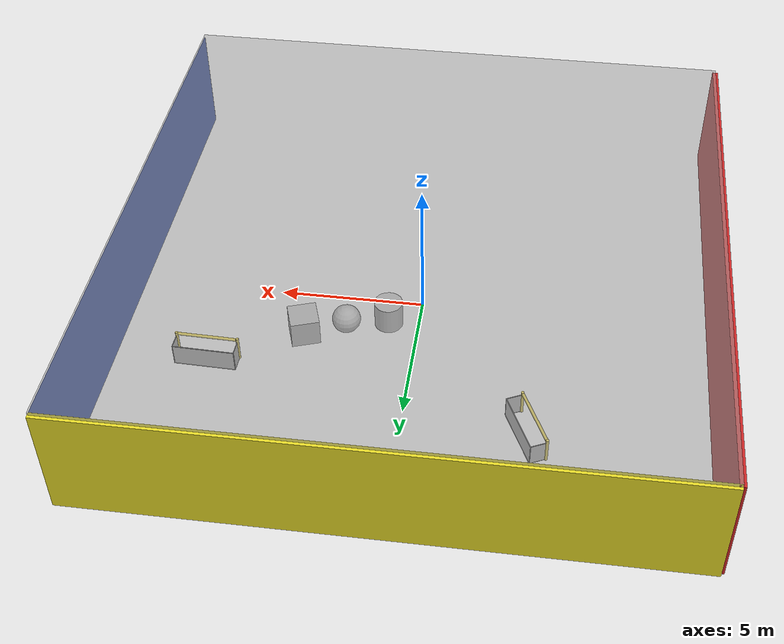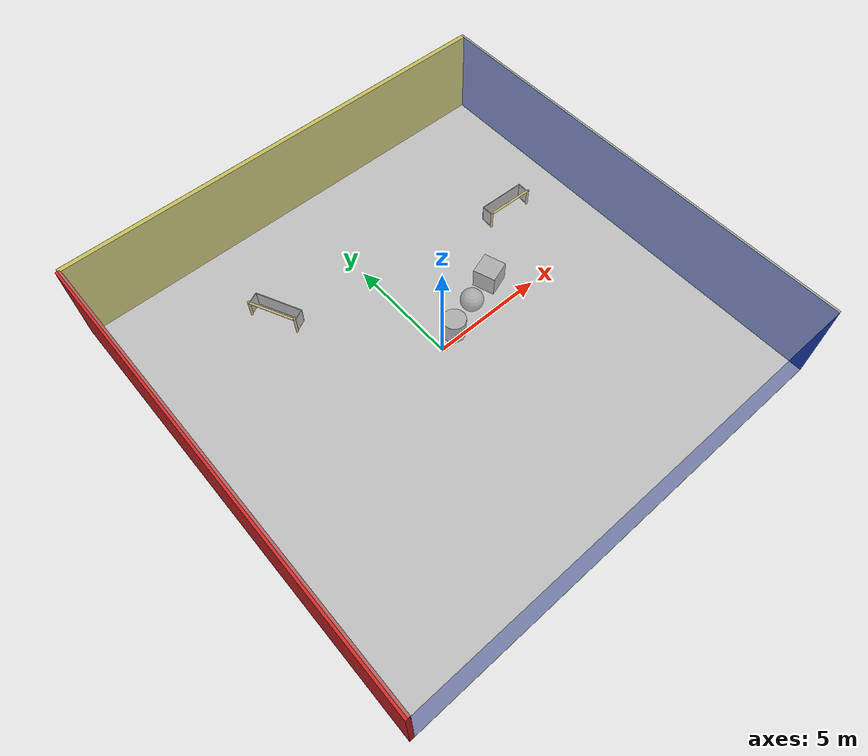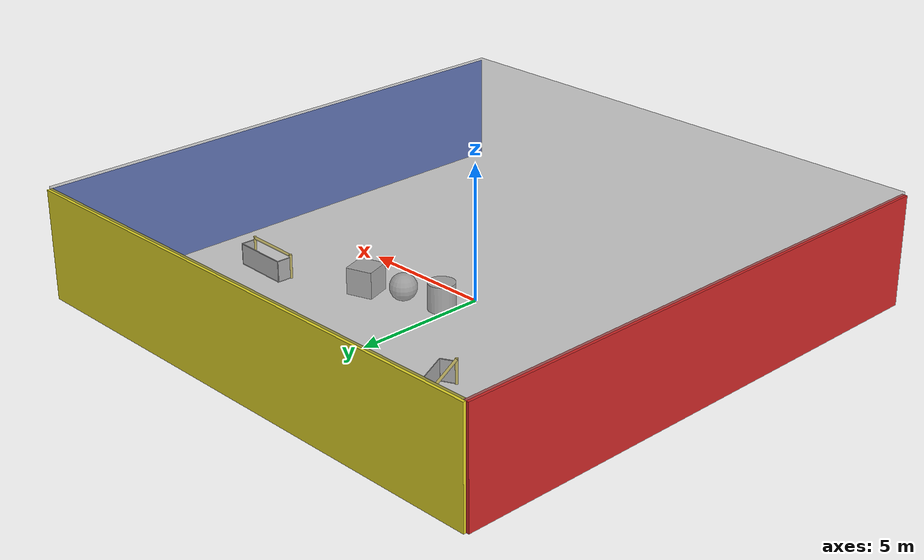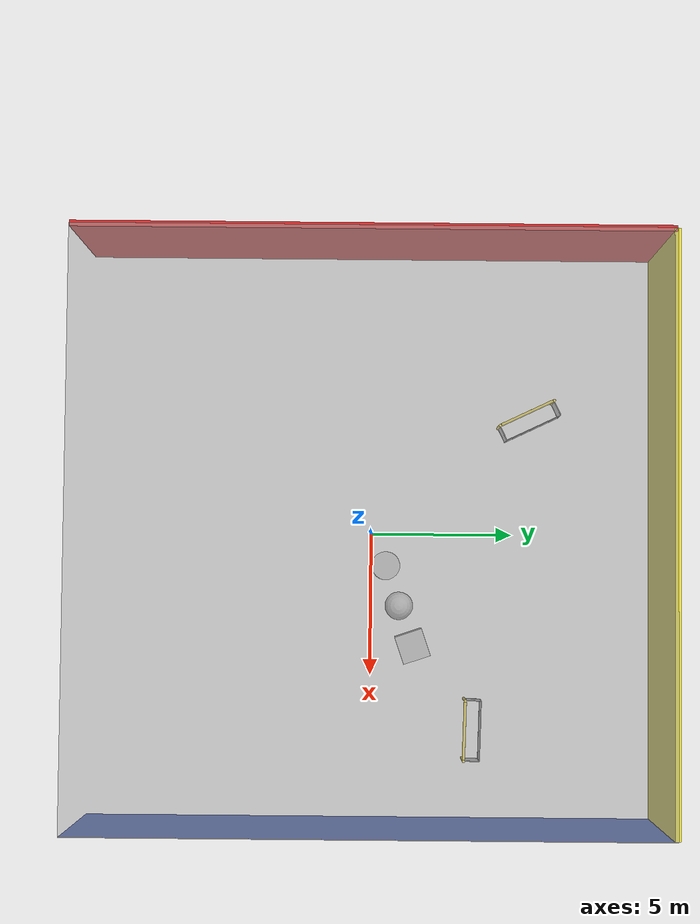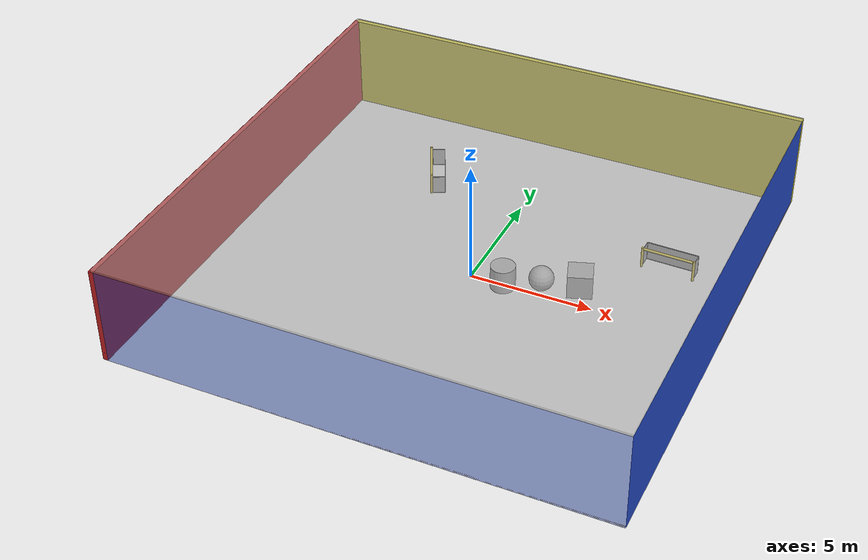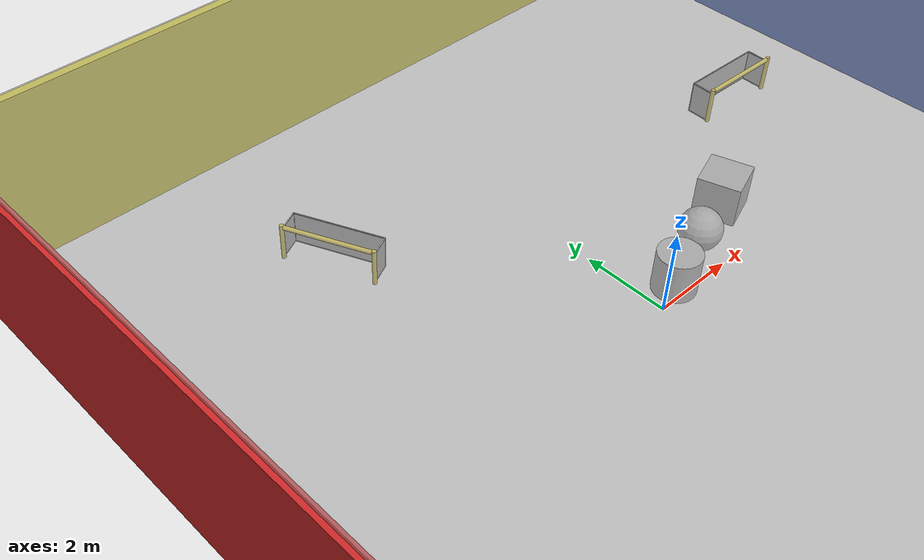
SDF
<sdf version="1.4">
 <world name="default">
  <physics type="ode">
   <max_step_size>0.001</max_step_size>
   <real_time_factor>1</real_time_factor>
   <real_time_update_rate>1000</real_time_update_rate>
   <gravity>0 0 -9.8</gravity>
  </physics>
  <scene><ambient>0.4 0.4 0.4 1</ambient><background>0.7 0.7 0.7 1</background><shadows>1</shadows></scene>
  <model name="Surrounding">
   <static>1</static>
   <link name="Ceiling">
    <collision name="Ceiling_Collision"><geometry><box><size>20 20 0.1</size></box></geometry></collision>
    <visual name="Ceiling_Visual">
     <geometry><box><size>20 20 0.1</size></box></geometry>
     <material>
      <script><uri>file://media/materials/scripts/gazebo.material</uri><name>Gazebo/GreyTransparent</name></script>
     </material>
    </visual>
    <pose>0 0 4.05 0 0 0</pose>
   </link>
   <link name="Wall_South">
    <collision name="Wall_South_Collision">
     <geometry><box><size>20 0 4</size></box></geometry>
     <pose>0 0 2 0 -0 0</pose>
    </collision>
    <visual name="Wall_South_Visual">
     <pose>0 0 2 0 -0 0</pose>
     <geometry><box><size>20 0 4</size></box></geometry>
     <material>
      <script><uri>file://media/materials/scripts/gazebo.material</uri><name>Gazebo/BlueTransparent</name></script>
     </material>
    </visual>
    <velocity_decay><linear>0</linear><angular>0</angular></velocity_decay>
    <pose>0 -10 0 0 -0 0</pose>
   </link>
   <link name="Wall_East">
    <collision name="Wall_21_Collision">
     <geometry><box><size>20 0 4</size></box></geometry>
     <pose>0 0 2 0 -0 0</pose>
    </collision>
    <visual name="Wall_21_Visual">
     <pose>0 0 2 0 -0 0</pose>
     <geometry><box><size>20 0 4</size></box></geometry>
     <material>
      <script><uri>file://media/materials/scripts/gazebo.material</uri><name>Gazebo/BlueLaser</name></script>
     </material>
    </visual>
    <velocity_decay><linear>0</linear><angular>0</angular></velocity_decay>
    <pose>10 0 0 0 -0 1.5708</pose>
   </link>
   <link name="Wall_North">
    <collision name="Wall_22_Collision">
     <geometry><box><size>20 0.2 4</size></box></geometry>
     <pose>0 0 2 0 -0 0</pose>
    </collision>
    <visual name="Wall_22_Visual">
     <pose>0 0 2 0 -0 0</pose>
     <geometry><box><size>20 0.2 4</size></box></geometry>
     <material>
      <script><uri>file://media/materials/scripts/gazebo.material</uri><name>Gazebo/Yellow</name></script>
     </material>
    </visual>
    <velocity_decay><linear>0</linear><angular>0</angular></velocity_decay>
    <pose>0 10 0 0 -0 0</pose>
   </link>
   <link name="Wall_West">
    <collision name="Wall_23_Collision">
     <geometry><box><size>20 0.2 4</size></box></geometry>
     <pose>0 0 2 0 -0 0</pose>
    </collision>
    <visual name="Wall_23_Visual">
     <pose>0 0 2 0 -0 0</pose>
     <geometry><box><size>20 0.2 4</size></box></geometry>
     <material>
      <script><uri>file://media/materials/scripts/gazebo.material</uri><name>Gazebo/RedGlow</name></script>
     </material>
    </visual>
    <velocity_decay><linear>0</linear><angular>0</angular></velocity_decay>
    <pose>-10 0 0 0 0 -1.5708</pose>
   </link>
   <link name="Ground_link">
    <collision name="collision">
     <pose>0 0 .05 0 -0 0</pose>
     <geometry><box><size>20 20 0.1</size></box></geometry>
    </collision>
    <visual name="visual">
     <pose>0 0 .05 0 -0 0</pose>
     <geometry><box><size>20 20 0.1</size></box></geometry>
     <material>
      <script>
       <uri>file://media/materials/scripts/gazebo.material</uri>
       <name>Gazebo/OrangeTransparent</name>
      </script>
     </material>
    </visual>
   </link>
   <static>1</static>
  </model>
  <spherical_coordinates>
   <surface_model>EARTH_WGS84</surface_model>
   <latitude_deg>0</latitude_deg>
   <longitude_deg>0</longitude_deg>
   <elevation>0</elevation>
   <heading_deg>0</heading_deg>
  </spherical_coordinates>
  <light name="lightball_0" type="diffuse">
   <diffuse>0.8 0.8 0.8 1</diffuse>
   <specular>0.2 0.2 0.2 1</specular>
   <attenuation>
    <range>100</range>
    <constant>0.7</constant>
    <linear>0.01</linear>
    <quadratic>0.001</quadratic>
   </attenuation>
   <direction>-0.5 0.1 -0.9</direction>
   <pose>-9.09397999817 -6.9263907315 1.0427935339 0 0 0</pose>
  </light>
  <light name="lightball_1" type="diffuse">
   <diffuse>0.8 0.8 0.8 1</diffuse>
   <specular>0.2 0.2 0.2 1</specular>
   <attenuation>
    <range>100</range>
    <constant>0.7</constant>
    <linear>0.01</linear>
    <quadratic>0.001</quadratic>
   </attenuation>
   <direction>-0.5 0.1 -0.9</direction>
   <pose>3.48205278782 -3.67642335262 2.07677210192 0 0 0</pose>
  </light>
  <light name="lightball_2" type="diffuse">
   <diffuse>0.8 0.8 0.8 1</diffuse>
   <specular>0.2 0.2 0.2 1</specular>
   <attenuation>
    <range>100</range>
    <constant>0.7</constant>
    <linear>0.01</linear>
    <quadratic>0.001</quadratic>
   </attenuation>
   <direction>-0.5 0.1 -0.9</direction>
   <pose>0.832157871456 9.02321497371 1.64073714885 0 0 0</pose>
  </light>
  <light name="lightball_3" type="diffuse">
   <diffuse>0.8 0.8 0.8 1</diffuse>
   <specular>0.2 0.2 0.2 1</specular>
   <attenuation>
    <range>100</range>
    <constant>0.7</constant>
    <linear>0.01</linear>
    <quadratic>0.001</quadratic>
   </attenuation>
   <direction>-0.5 0.1 -0.9</direction>
   <pose>1.97077487876 1.6624315379 1.19287489837 0 0 0</pose>
  </light>
  <light name="lightball_4" type="diffuse">
   <diffuse>0.8 0.8 0.8 1</diffuse>
   <specular>0.2 0.2 0.2 1</specular>
   <attenuation>
    <range>100</range>
    <constant>0.7</constant>
    <linear>0.01</linear>
    <quadratic>0.001</quadratic>
   </attenuation>
   <direction>-0.5 0.1 -0.9</direction>
   <pose>-2.41726916205 -4.18471883862 1.51126750278 0 0 0</pose>
  </light>
  <light name="lightball_5" type="diffuse">
   <diffuse>0.8 0.8 0.8 1</diffuse>
   <specular>0.2 0.2 0.2 1</specular>
   <attenuation>
    <range>100</range>
    <constant>0.7</constant>
    <linear>0.01</linear>
    <quadratic>0.001</quadratic>
   </attenuation>
   <direction>-0.5 0.1 -0.9</direction>
   <pose>1.12079701168 9.84360873286 0.827486607477 0 0 0</pose>
  </light>
  <light name="lightball_6" type="diffuse">
   <diffuse>0.8 0.8 0.8 1</diffuse>
   <specular>0.2 0.2 0.2 1</specular>
   <attenuation>
    <range>100</range>
    <constant>0.7</constant>
    <linear>0.01</linear>
    <quadratic>0.001</quadratic>
   </attenuation>
   <direction>-0.5 0.1 -0.9</direction>
   <pose>4.25538365215 4.77147467121 1.41841156491 0 0 0</pose>
  </light>
  <light name="lightball_7" type="diffuse">
   <diffuse>0.8 0.8 0.8 1</diffuse>
   <specular>0.2 0.2 0.2 1</specular>
   <attenuation>
    <range>100</range>
    <constant>0.7</constant>
    <linear>0.01</linear>
    <quadratic>0.001</quadratic>
   </attenuation>
   <direction>-0.5 0.1 -0.9</direction>
   <pose>8.52952072496 5.93323542147 1.6959322215 0 0 0</pose>
  </light>
  <light name="lightball_8" type="diffuse">
   <diffuse>0.8 0.8 0.8 1</diffuse>
   <specular>0.2 0.2 0.2 1</specular>
   <attenuation>
    <range>100</range>
    <constant>0.7</constant>
    <linear>0.01</linear>
    <quadratic>0.001</quadratic>
   </attenuation>
   <direction>-0.5 0.1 -0.9</direction>
   <pose>0.595026810253 -8.90240166914 2.79309239934 0 0 0</pose>
  </light>
  <light name="lightball_9" type="diffuse">
   <diffuse>0.8 0.8 0.8 1</diffuse>
   <specular>0.2 0.2 0.2 1</specular>
   <attenuation>
    <range>100</range>
    <constant>0.7</constant>
    <linear>0.01</linear>
    <quadratic>0.001</quadratic>
   </attenuation>
   <direction>-0.5 0.1 -0.9</direction>
   <pose>2.60744906951 -7.48658087161 2.14633057817 0 0 0</pose>
  </light>
  <light name="lightball_10" type="diffuse">
   <diffuse>0.8 0.8 0.8 1</diffuse>
   <specular>0.2 0.2 0.2 1</specular>
   <attenuation>
    <range>100</range>
    <constant>0.7</constant>
    <linear>0.01</linear>
    <quadratic>0.001</quadratic>
   </attenuation>
   <direction>-0.5 0.1 -0.9</direction>
   <pose>7.72736875751 5.39773620593 1.68091959785 0 0 0</pose>
  </light>
  <include>
   <uri>model://robocup_3Dsim_goal</uri>
   <pose>-4.28099259601 5.46002655937 0 0 0 0.443181675121</pose>
  </include>
  <include>
   <uri>model://textured_shapes</uri>
   <pose>2.54567719489 1.01235171065 0 0 0 1.89838237283</pose>
  </include>
  <include>
   <uri>model://robocup_3Dsim_goal</uri>
   <pose>6.86103354452 3.31294531476 0 0 0 1.54354710073</pose>
  </include>
 </world>
</sdf>

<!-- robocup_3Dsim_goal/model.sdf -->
<sdf version="1.5">
  <model name="robocup_3d_goal">
    <static>true</static>
    <link name="left_post">
      <pose>0 1.05 0.45 0 0 0</pose>
      <collision name="collision">
        <geometry>
          <cylinder>
            <radius>0.05</radius>
            <length>0.9</length>
          </cylinder>
        </geometry>
      </collision>
      <visual name="visual">
        <geometry>
          <cylinder>
            <radius>0.05</radius>
            <length>0.9</length>
          </cylinder>
        </geometry>
        <material>
          <script>
            <uri>file://media/materials/scripts/gazebo.material</uri>
            <name>Gazebo/ZincYellow</name>
          </script>
        </material>
      </visual>
    </link>
    <link name="left_support_horiz_lower">
      <pose>0.30 1.05 0.01 0 0 0</pose>
      <collision name="collision">
        <geometry>
          <box>
            <size>0.50 0.02 0.02</size>
          </box>
        </geometry>
      </collision>
      <visual name="visual">
        <geometry>
          <box>
            <size>0.50 0.02 0.02</size>
          </box>
        </geometry>
        <material>
          <script>
            <uri>file://media/materials/scripts/gazebo.material</uri>
            <name>Gazebo/White</name>
          </script>
        </material>
      </visual>
    </link>
    <link name="left_support_horiz_upper">
      <pose>0.30 1.05 0.79 0 0 0</pose>
      <collision name="collision">
        <geometry>
          <box>
            <size>0.50 0.02 0.02</size>
          </box>
        </geometry>
      </collision>
      <visual name="visual">
        <geometry>
          <box>
            <size>0.50 0.02 0.02</size>
          </box>
        </geometry>
        <material>
          <script>
            <uri>file://media/materials/scripts/gazebo.material</uri>
            <name>Gazebo/White</name>
          </script>
        </material>
      </visual>
    </link>
    <link name="left_support_vertical">
      <pose>0.56 1.05 0.4 0 1.5708 0</pose>
      <collision name="collision">
        <geometry>
          <box>
            <size>0.80 0.02 0.02</size>
          </box>
        </geometry>
      </collision>
      <visual name="visual">
        <geometry>
          <box>
            <size>0.80 0.02 0.02</size>
          </box>
        </geometry>
        <material>
          <script>
            <uri>file://media/materials/scripts/gazebo.material</uri>
            <name>Gazebo/White</name>
          </script>
        </material>
      </visual>
    </link>
    <link name="right_support_horiz_lower">
      <pose>0.30 -1.05 0.01 0 0 0</pose>
      <collision name="collision">
        <geometry>
          <box>
            <size>0.50 0.02 0.02</size>
          </box>
        </geometry>
      </collision>
      <visual name="visual">
        <geometry>
          <box>
            <size>0.50 0.02 0.02</size>
          </box>
        </geometry>
        <material>
          <script>
            <uri>file://media/materials/scripts/gazebo.material</uri>
            <name>Gazebo/White</name>
          </script>
        </material>
      </visual>
    </link>
    <link name="right_support_horiz_upper">
      <pose>0.30 -1.05 0.79 0 0 0</pose>
      <collision name="collision">
        <geometry>
          <box>
            <size>0.50 0.02 0.02</size>
          </box>
        </geometry>
      </collision>
      <visual name="visual">
        <geometry>
          <box>
            <size>0.50 0.02 0.02</size>
          </box>
        </geometry>
        <material>
          <script>
            <uri>file://media/materials/scripts/gazebo.material</uri>
            <name>Gazebo/White</name>
          </script>
        </material>
      </visual>
    </link>
    <link name="right_support_vertical">
      <pose>0.56 -1.05 0.4 0 1.5708 0</pose>
      <collision name="collision">
        <geometry>
          <box>
            <size>0.80 0.02 0.02</size>
          </box>
        </geometry>
      </collision>
      <visual name="visual">
        <geometry>
          <box>
            <size>0.80 0.02 0.02</size>
          </box>
        </geometry>
        <material>
          <script>
            <uri>file://media/materials/scripts/gazebo.material</uri>
            <name>Gazebo/White</name>
          </script>
        </material>
      </visual>
    </link>
    <link name="center_support_horiz_lower">
      <pose>0.56 0 0.01 0 1.5708 0</pose>
      <collision name="collision">
        <geometry>
          <box>
            <size>0.02 2.08 0.02</size>
          </box>
        </geometry>
      </collision>
      <visual name="visual">
        <geometry>
          <box>
            <size>0.02 2.08 0.02</size>
          </box>
        </geometry>
        <material>
          <script>
            <uri>file://media/materials/scripts/gazebo.material</uri>
            <name>Gazebo/White</name>
          </script>
        </material>
      </visual>
    </link>
    <link name="center_support_horiz_upper">
      <pose>0.56 0 0.79 0 1.5708 0</pose>
      <collision name="collision">
        <geometry>
          <box>
            <size>0.02 2.08 0.02</size>
          </box>
        </geometry>
      </collision>
      <visual name="visual">
        <geometry>
          <box>
            <size>0.02 2.08 0.02</size>
          </box>
        </geometry>
        <material>
          <script>
            <uri>file://media/materials/scripts/gazebo.material</uri>
            <name>Gazebo/White</name>
          </script>
        </material>
      </visual>
    </link>
    <link name="right_post">
      <pose>0 -1.05 0.45 0 0 0</pose>
      <collision name="collision">
        <geometry>
          <cylinder>
            <radius>0.05</radius>
            <length>0.9</length>
          </cylinder>
        </geometry>
      </collision>
      <visual name="visual">
        <geometry>
          <cylinder>
            <radius>0.05</radius>
            <length>0.9</length>
          </cylinder>
        </geometry>
        <material>
          <script>
            <uri>file://media/materials/scripts/gazebo.material</uri>
            <name>Gazebo/ZincYellow</name>
          </script>
        </material>
      </visual>
    </link>
    <link name="crossbar">
      <pose>0 0 0.85 1.57 1.57 0</pose>
      <collision name="collision">
        <geometry>
          <cylinder>
            <radius>0.05</radius>
            <length>2.0</length>
          </cylinder>
        </geometry>
      </collision>
      <visual name="visual">
        <geometry>
          <cylinder>
            <radius>0.05</radius>
            <length>2.0</length>
          </cylinder>
        </geometry>
        <material>
          <script>
            <uri>file://media/materials/scripts/gazebo.material</uri>
            <name>Gazebo/ZincYellow</name>
          </script>
        </material>
      </visual>
    </link>
    <link name="center_net">
      <pose>0.56 0 0.40 0 0 0</pose>
      <collision name="collision">
        <geometry>
          <box>
            <size>0.01 2.1 0.80</size>
          </box>
        </geometry>
      </collision>
      <visual name="visual">
        <geometry>
          <box>
            <size>0.01 2.1 0.80</size>
          </box>
        </geometry>
        <material>
          <script>
            <uri>model://../model_source/models/robocup09_spl_field/materials/scripts/</uri>
            <uri>model://../model_source/models/robocup09_spl_field/materials/textures/</uri>
            <name>RoboCup/Net</name>
          </script>
        </material>
      </visual>
    </link>
    <link name="left_net">
      <pose>0.30 1.05 0.40 0 0 0</pose>
      <collision name="collision">
        <geometry>
          <box>
            <size>0.50 0.01 0.76</size>
          </box>
        </geometry>
      </collision>
      <visual name="visual">
        <geometry>
          <box>
            <size>0.50 0.01 0.76</size>
          </box>
        </geometry>
        <material>
          <script>
            <uri>model://../model_source/models/robocup09_spl_field/materials/scripts/</uri>
            <uri>model://../model_source/models/robocup09_spl_field/materials/textures/</uri>
            <name>RoboCup/Net</name>
          </script>
        </material>
      </visual>
    </link>
    <link name="right_net">
      <pose>0.30 -1.05 0.40 0 0 0</pose>
      <collision name="collision">
        <geometry>
          <box>
            <size>0.50 0.01 0.76</size>
          </box>
        </geometry>
      </collision>
      <visual name="visual">
        <geometry>
          <box>
            <size>0.50 0.01 0.76</size>
          </box>
        </geometry>
        <material>
          <script>
            <uri>model://../model_source/models/robocup09_spl_field/materials/scripts/</uri>
            <uri>model://../model_source/models/robocup09_spl_field/materials/textures/</uri>
            <name>RoboCup/Net</name>
          </script>
        </material>
      </visual>
    </link>
  </model>
</sdf>

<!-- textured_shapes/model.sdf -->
<sdf version="1.6">
  <model name="textured_shapes">
    <pose>0 0 0.5 0 0 0</pose>
    <link name="box">
      <pose>0 -1.5 0 0 0 0</pose>
      <collision name="collision">
        <geometry>
          <box>
            <size>1 1 1</size>
          </box>
        </geometry>
      </collision>
      <visual name="visual">
        <geometry>
          <box>
            <size>1 1 1</size>
          </box>
        </geometry>
        <material>
          <script>
            <uri>model://../model_source/models/textured_shapes/materials/scripts</uri>
            <uri>model://../model_source/models/textured_shapes/materials/textures</uri>
            <name>TexturedShape/Squares</name>
          </script>
        </material>
      </visual>
    </link>
    <link name="sphere">
      <collision name="collision">
        <geometry>
          <sphere>
            <radius>0.5</radius>
          </sphere>
        </geometry>
      </collision>
      <visual name="visual">
        <geometry>
          <sphere>
            <radius>0.5</radius>
          </sphere>
        </geometry>
        <material>
          <script>
            <uri>model://../model_source/models/textured_shapes/materials/scripts</uri>
            <uri>model://../model_source/models/textured_shapes/materials/textures</uri>
            <name>TexturedShape/Squares</name>
          </script>
        </material>
      </visual>
    </link>
    <link name="cylinder">
      <pose>0 1.5 0 0 0 0</pose>
      <collision name="collision">
        <geometry>
          <cylinder>
            <radius>0.5</radius>
            <length>1</length>
          </cylinder>
        </geometry>
      </collision>
      <visual name="visual">
        <geometry>
          <cylinder>
            <radius>0.5</radius>
            <length>1</length>
          </cylinder>
        </geometry>
        <material>
          <script>
            <uri>model://../model_source/models/textured_shapes/materials/scripts</uri>
            <uri>model://../model_source/models/textured_shapes/materials/textures</uri>
            <name>TexturedShape/Squares</name>
          </script>
        </material>
      </visual>
    </link>
  </model>
</sdf>
